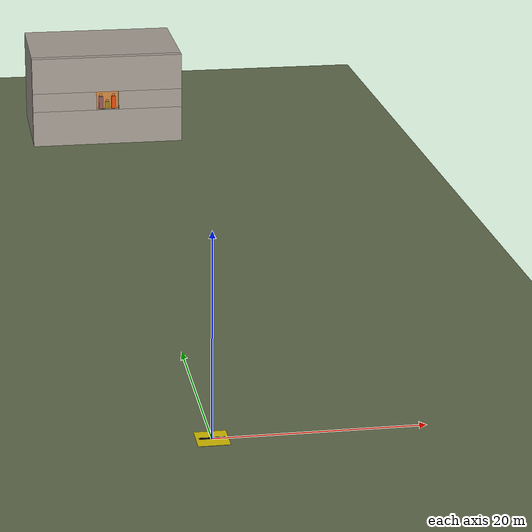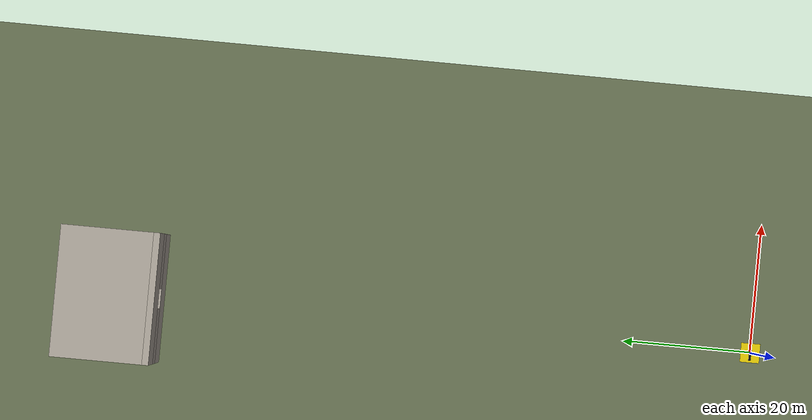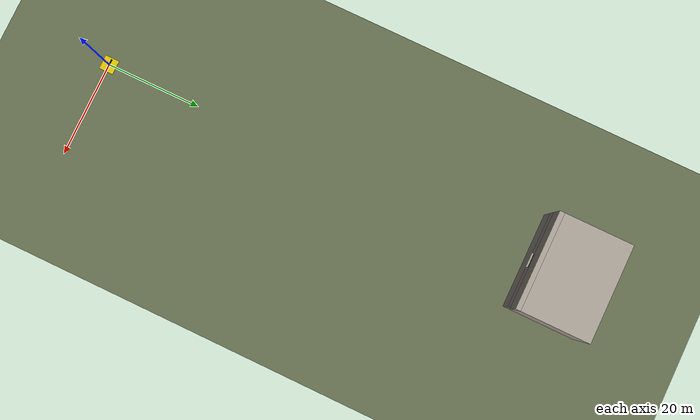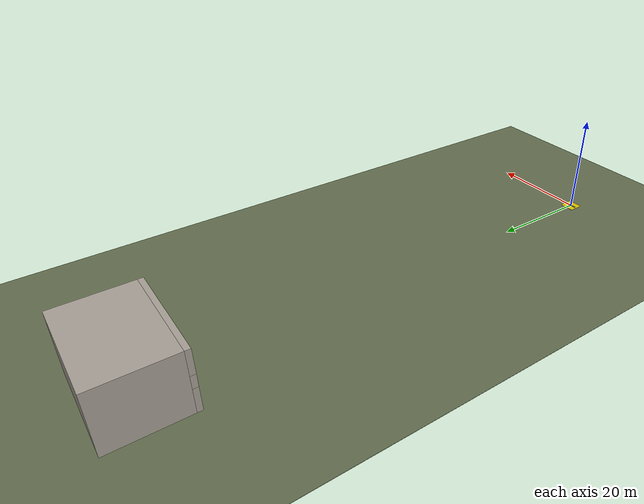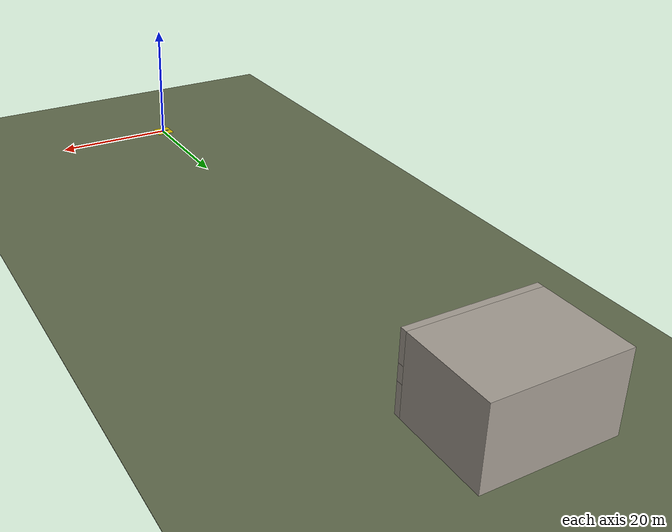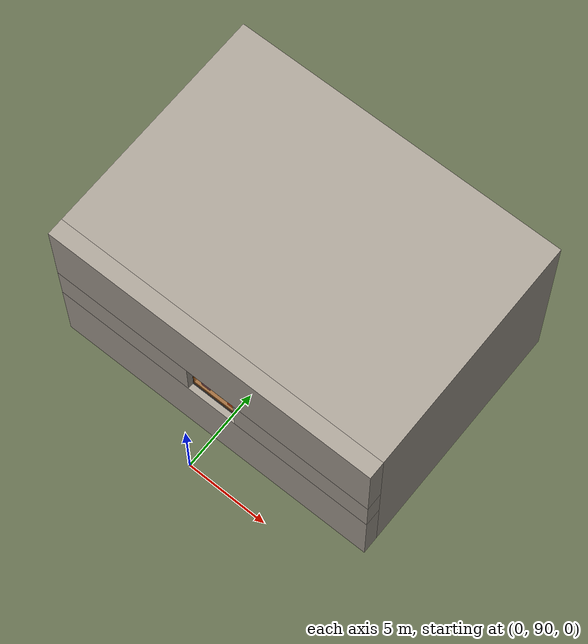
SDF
<?xml version="1.0"?>
<sdf version="1.9">
  <world name="map">

    <physics type="ode">
      <max_step_size>0.001</max_step_size>
      <real_time_factor>1.0</real_time_factor>
      <real_time_update_rate>1000</real_time_update_rate>
    </physics>

    <plugin name='gz::sim::systems::Physics'          filename='gz-sim-physics-system'/>
    <plugin name='gz::sim::systems::UserCommands'     filename='gz-sim-user-commands-system'/>
    <plugin name='gz::sim::systems::SceneBroadcaster' filename='gz-sim-scene-broadcaster-system'/>
    <plugin name='gz::sim::systems::Contact'          filename='gz-sim-contact-system'/>
    <plugin name='gz::sim::systems::Imu'              filename='gz-sim-imu-system'/>
    <plugin name='gz::sim::systems::AirPressure'      filename='gz-sim-air-pressure-system'/>
    <plugin name='gz::sim::systems::AirSpeed'         filename='gz-sim-air-speed-system'/>
    <plugin name='gz::sim::systems::ApplyLinkWrench'  filename='gz-sim-apply-link-wrench-system'/>
    <plugin name='gz::sim::systems::Magnetometer'     filename='gz-sim-magnetometer-system'/>
    <plugin name='gz::sim::systems::NavSat'           filename='gz-sim-navsat-system'/>
    <plugin name='gz::sim::systems::ParticleEmitter'  filename='gz-sim-particle-emitter-system'/>
    <plugin name='gz::sim::systems::Sensors'          filename='gz-sim-sensors-system'>
      <render_engine>ogre2</render_engine>
    </plugin>

    <!-- LIGHTING                                                          -->

    <light name="sun" type="directional">
      <pose>0 0 500 0 0 0</pose>
      <cast_shadows>true</cast_shadows>
      <intensity>1.0</intensity>
      <direction>0.3 0.5 -0.8</direction>
      <diffuse>0.95 0.95 0.9 1</diffuse>
      <specular>0.3 0.3 0.3 1</specular>
      <attenuation>
        <range>2000</range><linear>0</linear><constant>1</constant><quadratic>0</quadratic>
      </attenuation>
    </light>

    <!-- Warm fire glow cast outward through window -->
    <light name="fire_light" type="point">
      <pose>0 92.9 6 0 0 0</pose>
      <cast_shadows>false</cast_shadows>
      <intensity>4.0</intensity>
      <diffuse>1.0 0.45 0.05 1</diffuse>
      <specular>1.0 0.3 0.0 1</specular>
      <attenuation>
        <range>35</range><linear>0.04</linear><constant>0.1</constant><quadratic>0.015</quadratic>
      </attenuation>
    </light>

    <scene>
      <ambient>0.45 0.45 0.45 1</ambient>
      <background>0.6 0.75 0.9 1</background>
      <sky></sky>
    </scene>

    <!-- GROUND                                                            -->

    <model name="ground_plane">
      <static>true</static>
      <pose>0 0 -0.05 0 0 0</pose>
      <link name="link">
        <collision name="c">
          <geometry><box><size>2000 2000 0.1</size></box></geometry>
        </collision>
        <visual name="v">
          <geometry><box><size>2000 2000 0.1</size></box></geometry>
          <material>
            <ambient>0.38 0.42 0.30 1</ambient>
            <diffuse>0.38 0.42 0.30 1</diffuse>
          </material>
        </visual>
      </link>
    </model>

    <!-- LAUNCH PAD                                                        -->

    <model name="launch_pad">
      <static>true</static>
      <pose>0 0 0.02 0 0 0</pose>
      <link name="link">
        <visual name="pad">
          <geometry><box><size>3 3 0.03</size></box></geometry>
          <material>
            <ambient>0.85 0.75 0.0 1</ambient>
            <diffuse>0.85 0.75 0.0 1</diffuse>
            <emissive>0.2 0.15 0.0 1</emissive>
          </material>
        </visual>
        <collision name="c">
          <geometry><box><size>3 3 0.03</size></box></geometry>
        </collision>
      </link>
    </model>

    <model name="pad_h_bar">
      <static>true</static>
      <pose>0 0 0.06 0 0 0</pose>
      <link name="link">
        <visual name="v">
          <geometry><box><size>2.4 0.35 0.02</size></box></geometry>
          <material>
            <ambient>0.0 0.0 0.0 1</ambient>
            <diffuse>0.0 0.0 0.0 1</diffuse>
          </material>
        </visual>
      </link>
    </model>

    <!-- BUILDING                                                          -->
    <!--   Main body: 20×14×12 at (0,100,6) → south face at y=93         -->
    <!--   South facade: 4 wall panels at y=92.5 (1 m thick)             -->
    <!--   Window opening: x ∈ [-1.5,1.5], z ∈ [4.75,7.25]             -->

    <!-- Main building body (no south face — covered by facade panels) -->
    <model name="building_body">
      <static>true</static>
      <pose>0 100 6 0 0 0</pose>
      <link name="link">
        <visual name="v">
          <geometry><box><size>20 14 12</size></box></geometry>
          <material>
            <ambient>0.65 0.62 0.58 1</ambient>
            <diffuse>0.65 0.62 0.58 1</diffuse>
            <specular>0.08 0.08 0.08 1</specular>
          </material>
        </visual>
        <collision name="c">
          <geometry><box><size>20 14 12</size></box></geometry>
        </collision>
      </link>
    </model>

    <!-- South facade — below window (z: 0 → 4.75, centre z=2.375) -->
    <model name="sw_bottom">
      <static>true</static>
      <pose>0 92.5 2.375 0 0 0</pose>
      <link name="link">
        <visual name="v">
          <geometry><box><size>20 1.0 4.75</size></box></geometry>
          <material>
            <ambient>0.65 0.62 0.58 1</ambient>
            <diffuse>0.65 0.62 0.58 1</diffuse>
          </material>
        </visual>
        <collision name="c">
          <geometry><box><size>20 1.0 4.75</size></box></geometry>
        </collision>
      </link>
    </model>

    <!-- South facade — above window (z: 7.25 → 12, centre z=9.625) -->
    <model name="sw_top">
      <static>true</static>
      <pose>0 92.5 9.625 0 0 0</pose>
      <link name="link">
        <visual name="v">
          <geometry><box><size>20 1.0 4.75</size></box></geometry>
          <material>
            <ambient>0.65 0.62 0.58 1</ambient>
            <diffuse>0.65 0.62 0.58 1</diffuse>
          </material>
        </visual>
        <collision name="c">
          <geometry><box><size>20 1.0 4.75</size></box></geometry>
        </collision>
      </link>
    </model>

    <!-- South facade — left of window (x: -10 → -1.5, centre x=-5.75) -->
    <model name="sw_left">
      <static>true</static>
      <pose>-5.75 92.5 6 0 0 0</pose>
      <link name="link">
        <visual name="v">
          <geometry><box><size>8.5 1.0 2.5</size></box></geometry>
          <material>
            <ambient>0.65 0.62 0.58 1</ambient>
            <diffuse>0.65 0.62 0.58 1</diffuse>
          </material>
        </visual>
        <collision name="c">
          <geometry><box><size>8.5 1.0 2.5</size></box></geometry>
        </collision>
      </link>
    </model>

    <!-- South facade — right of window (x: 1.5 → 10, centre x=5.75) -->
    <model name="sw_right">
      <static>true</static>
      <pose>5.75 92.5 6 0 0 0</pose>
      <link name="link">
        <visual name="v">
          <geometry><box><size>8.5 1.0 2.5</size></box></geometry>
          <material>
            <ambient>0.65 0.62 0.58 1</ambient>
            <diffuse>0.65 0.62 0.58 1</diffuse>
          </material>
        </visual>
        <collision name="c">
          <geometry><box><size>8.5 1.0 2.5</size></box></geometry>
        </collision>
      </link>
    </model>

    <!-- WINDOW — transparent orange-glowing glass + dark frame bars      -->
    <!-- Glass at y=92.46 (just outside south facade face at y=92.0)     -->

    <!-- Glass pane — semi-transparent with fire glow -->
    <model name="window_glass">
      <static>true</static>
      <pose>0 92.44 6 0 0 0</pose>
      <link name="link">
        <visual name="v">
          <transparency>0.45</transparency>
          <geometry><box><size>3.0 0.05 2.5</size></box></geometry>
          <material>
            <ambient>1.0 0.50 0.05 1</ambient>
            <diffuse>1.0 0.50 0.05 1</diffuse>
            <emissive>0.70 0.22 0.0 1</emissive>
            <specular>0.8 0.5 0.1 1</specular>
          </material>
        </visual>
      </link>
    </model>

    <!-- Window frame — top bar -->
    <model name="wf_top">
      <static>true</static>
      <pose>0 92.41 7.32 0 0 0</pose>
      <link name="link">
        <visual name="v">
          <geometry><box><size>3.24 0.12 0.14</size></box></geometry>
          <material><ambient>0.15 0.15 0.15 1</ambient><diffuse>0.15 0.15 0.15 1</diffuse></material>
        </visual>
      </link>
    </model>

    <!-- Window frame — bottom bar -->
    <model name="wf_bottom">
      <static>true</static>
      <pose>0 92.41 4.68 0 0 0</pose>
      <link name="link">
        <visual name="v">
          <geometry><box><size>3.24 0.12 0.14</size></box></geometry>
          <material><ambient>0.15 0.15 0.15 1</ambient><diffuse>0.15 0.15 0.15 1</diffuse></material>
        </visual>
      </link>
    </model>

    <!-- Window frame — left bar -->
    <model name="wf_left">
      <static>true</static>
      <pose>-1.57 92.41 6 0 0 0</pose>
      <link name="link">
        <visual name="v">
          <geometry><box><size>0.14 0.12 2.78</size></box></geometry>
          <material><ambient>0.15 0.15 0.15 1</ambient><diffuse>0.15 0.15 0.15 1</diffuse></material>
        </visual>
      </link>
    </model>

    <!-- Window frame — right bar -->
    <model name="wf_right">
      <static>true</static>
      <pose>1.57 92.41 6 0 0 0</pose>
      <link name="link">
        <visual name="v">
          <geometry><box><size>0.14 0.12 2.78</size></box></geometry>
          <material><ambient>0.15 0.15 0.15 1</ambient><diffuse>0.15 0.15 0.15 1</diffuse></material>
        </visual>
      </link>
    </model>

    <!-- FIRE — particle emitter inside window recess                     -->
    <!-- Base at (0, 92.9, 4.9) — fires particles upward (+z)            -->

    <model name="fire">
      <static>true</static>
      <pose>0 92.9 4.9 0 0 0</pose>
      <link name="link">

        <!-- Main flame: bright yellow-orange → dark red/transparent -->
        <particle_emitter name="flames" type="box">
          <emitting>true</emitting>
          <size>1.4 0.3 0.1</size>
          <particle_size>0.35 0.35 0.35</particle_size>
          <lifetime>1.4</lifetime>
          <min_velocity>0.7</min_velocity>
          <max_velocity>1.6</max_velocity>
          <scale_rate>0.9</scale_rate>
          <rate>40</rate>
          <color_start>1.0 0.85 0.0 1.0</color_start>
          <color_end>0.85 0.05 0.0 0.0</color_end>
          <particle_scatter_ratio>0.1</particle_scatter_ratio>
        </particle_emitter>

        <!-- Inner hot core: brighter, faster, smaller -->
        <particle_emitter name="core" type="box">
          <emitting>true</emitting>
          <size>0.7 0.2 0.05</size>
          <particle_size>0.22 0.22 0.22</particle_size>
          <lifetime>0.9</lifetime>
          <min_velocity>1.0</min_velocity>
          <max_velocity>2.2</max_velocity>
          <scale_rate>0.5</scale_rate>
          <rate>55</rate>
          <color_start>1.0 1.0 0.6 1.0</color_start>
          <color_end>1.0 0.4 0.0 0.0</color_end>
          <particle_scatter_ratio>0.1</particle_scatter_ratio>
        </particle_emitter>

        <!-- Smoke: dark gray rising above flame, offset z=2.2 -->
        <particle_emitter name="smoke" type="box">
          <pose>0 0 2.2 0 0 0</pose>
          <emitting>true</emitting>
          <size>1.2 0.3 0.1</size>
          <particle_size>0.55 0.55 0.55</particle_size>
          <lifetime>4.0</lifetime>
          <min_velocity>0.25</min_velocity>
          <max_velocity>0.55</max_velocity>
          <scale_rate>0.28</scale_rate>
          <rate>7</rate>
          <color_start>0.30 0.28 0.25 0.80</color_start>
          <color_end>0.50 0.50 0.50 0.0</color_end>
          <particle_scatter_ratio>0.05</particle_scatter_ratio>
        </particle_emitter>

      </link>
    </model>

    <!-- PEOPLE — 3 occupants visible through the fire window            -->
    <!-- Positioned at y=92.75 (inside window recess, in front of wall) -->
    <!-- Window recess: y ∈ [92.0, 93.0]                                -->

    <!-- Person 1 — left, blue jacket -->
    <model name="person1_body">
      <static>true</static>
      <pose>-0.85 92.75 5.55 0 0 0</pose>
      <link name="link">
        <visual name="v">
          <geometry><box><size>0.55 0.32 1.65</size></box></geometry>
          <material>
            <ambient>0.10 0.20 0.80 1</ambient>
            <diffuse>0.10 0.20 0.80 1</diffuse>
          </material>
        </visual>
      </link>
    </model>
    <model name="person1_head">
      <static>true</static>
      <pose>-0.85 92.75 6.60 0 0 0</pose>
      <link name="link">
        <visual name="v">
          <geometry><sphere><radius>0.19</radius></sphere></geometry>
          <material>
            <ambient>0.82 0.62 0.44 1</ambient>
            <diffuse>0.82 0.62 0.44 1</diffuse>
          </material>
        </visual>
      </link>
    </model>

    <!-- Person 2 — right, red jacket -->
    <model name="person2_body">
      <static>true</static>
      <pose>0.85 92.75 5.55 0 0 0</pose>
      <link name="link">
        <visual name="v">
          <geometry><box><size>0.55 0.32 1.65</size></box></geometry>
          <material>
            <ambient>0.82 0.10 0.10 1</ambient>
            <diffuse>0.82 0.10 0.10 1</diffuse>
          </material>
        </visual>
      </link>
    </model>
    <model name="person2_head">
      <static>true</static>
      <pose>0.85 92.75 6.60 0 0 0</pose>
      <link name="link">
        <visual name="v">
          <geometry><sphere><radius>0.19</radius></sphere></geometry>
          <material>
            <ambient>0.74 0.54 0.40 1</ambient>
            <diffuse>0.74 0.54 0.40 1</diffuse>
          </material>
        </visual>
      </link>
    </model>

    <!-- Person 3 — centre, crouching, green jacket -->
    <model name="person3_body">
      <static>true</static>
      <pose>0.0 92.82 5.10 0 0 0</pose>
      <link name="link">
        <visual name="v">
          <geometry><box><size>0.55 0.32 1.05</size></box></geometry>
          <material>
            <ambient>0.12 0.60 0.18 1</ambient>
            <diffuse>0.12 0.60 0.18 1</diffuse>
          </material>
        </visual>
      </link>
    </model>
    <model name="person3_head">
      <static>true</static>
      <pose>0.0 92.82 5.78 0 0 0</pose>
      <link name="link">
        <visual name="v">
          <geometry><sphere><radius>0.19</radius></sphere></geometry>
          <material>
            <ambient>0.66 0.50 0.32 1</ambient>
            <diffuse>0.66 0.50 0.32 1</diffuse>
          </material>
        </visual>
      </link>
    </model>

    <!-- SPHERICAL COORDINATES — Nokia Arena, Tampere, Finland           -->

    <spherical_coordinates>
      <surface_model>EARTH_WGS84</surface_model>
      <world_frame_orientation>ENU</world_frame_orientation>
      <latitude_deg>61.4938</latitude_deg>
      <longitude_deg>23.7735</longitude_deg>
      <elevation>77.0</elevation>
      <heading_deg>0.0</heading_deg>
    </spherical_coordinates>

    <gravity>0.0 0.0 -9.81</gravity>

  </world>
</sdf>
